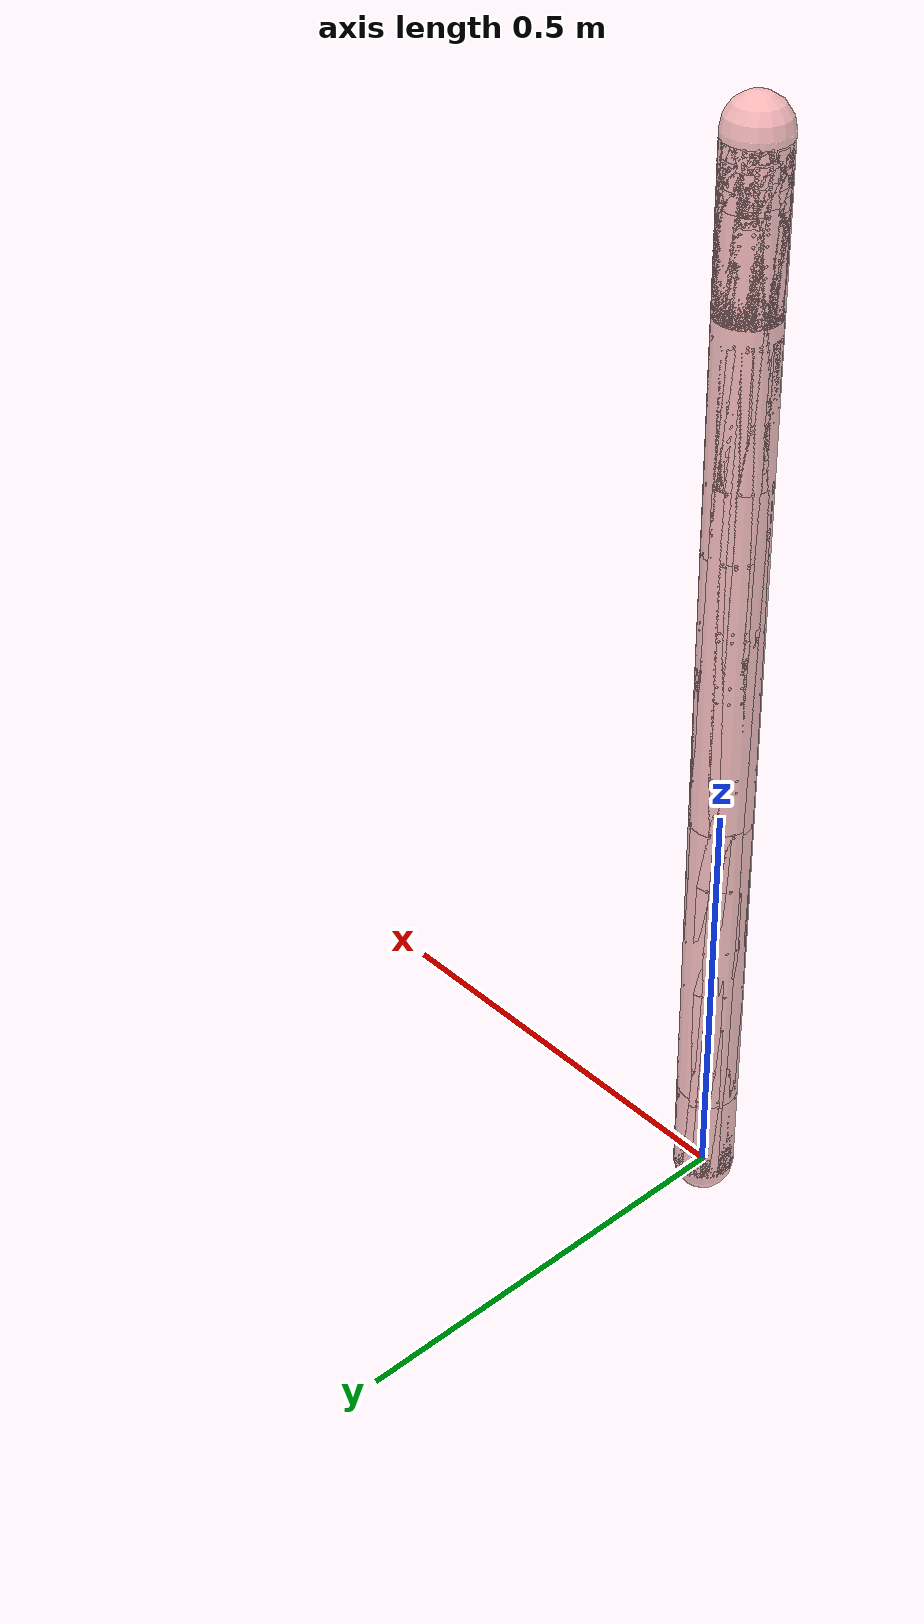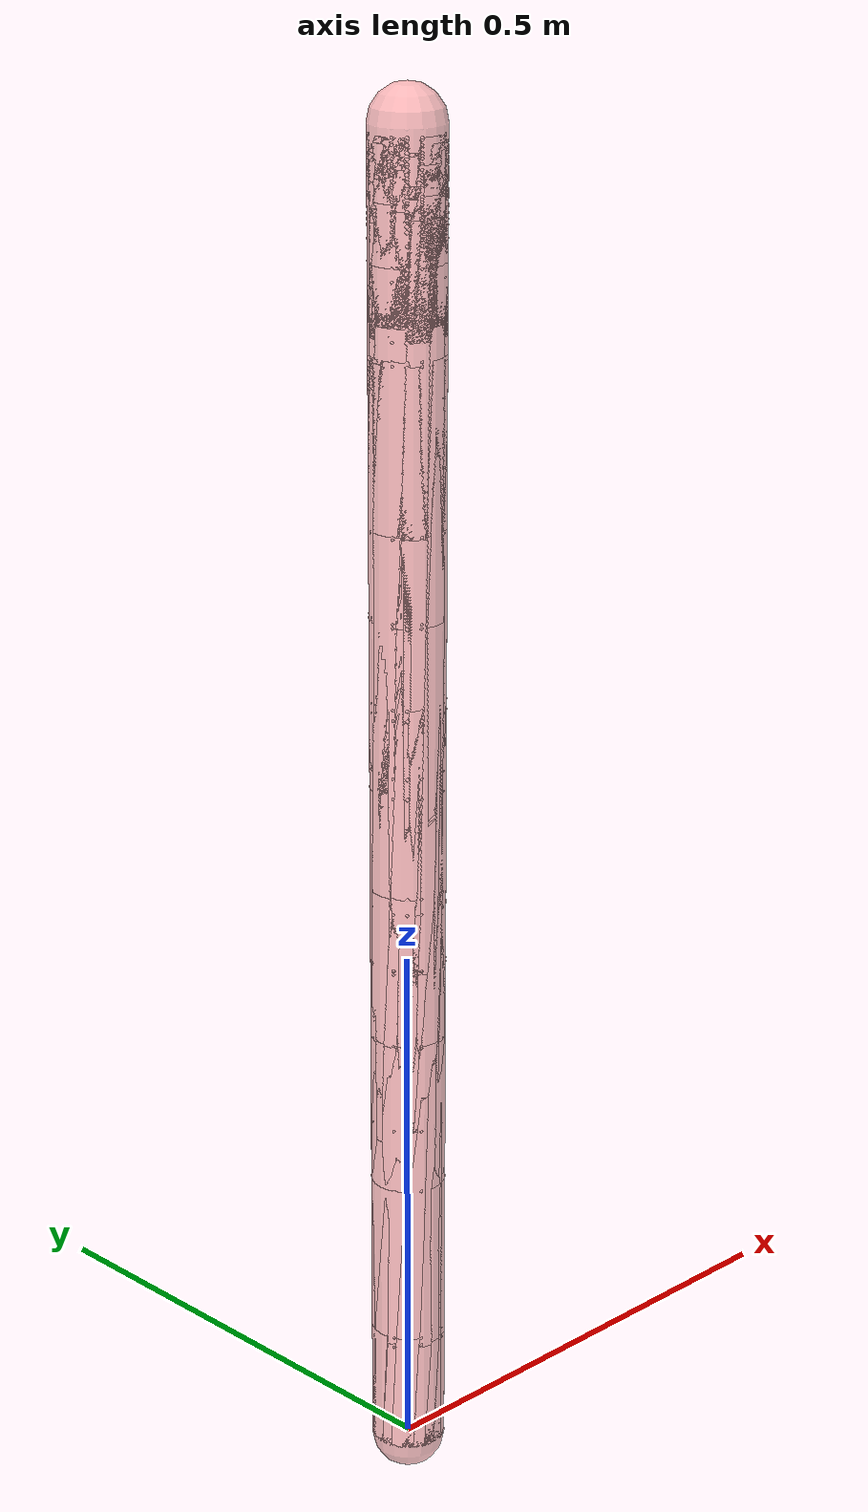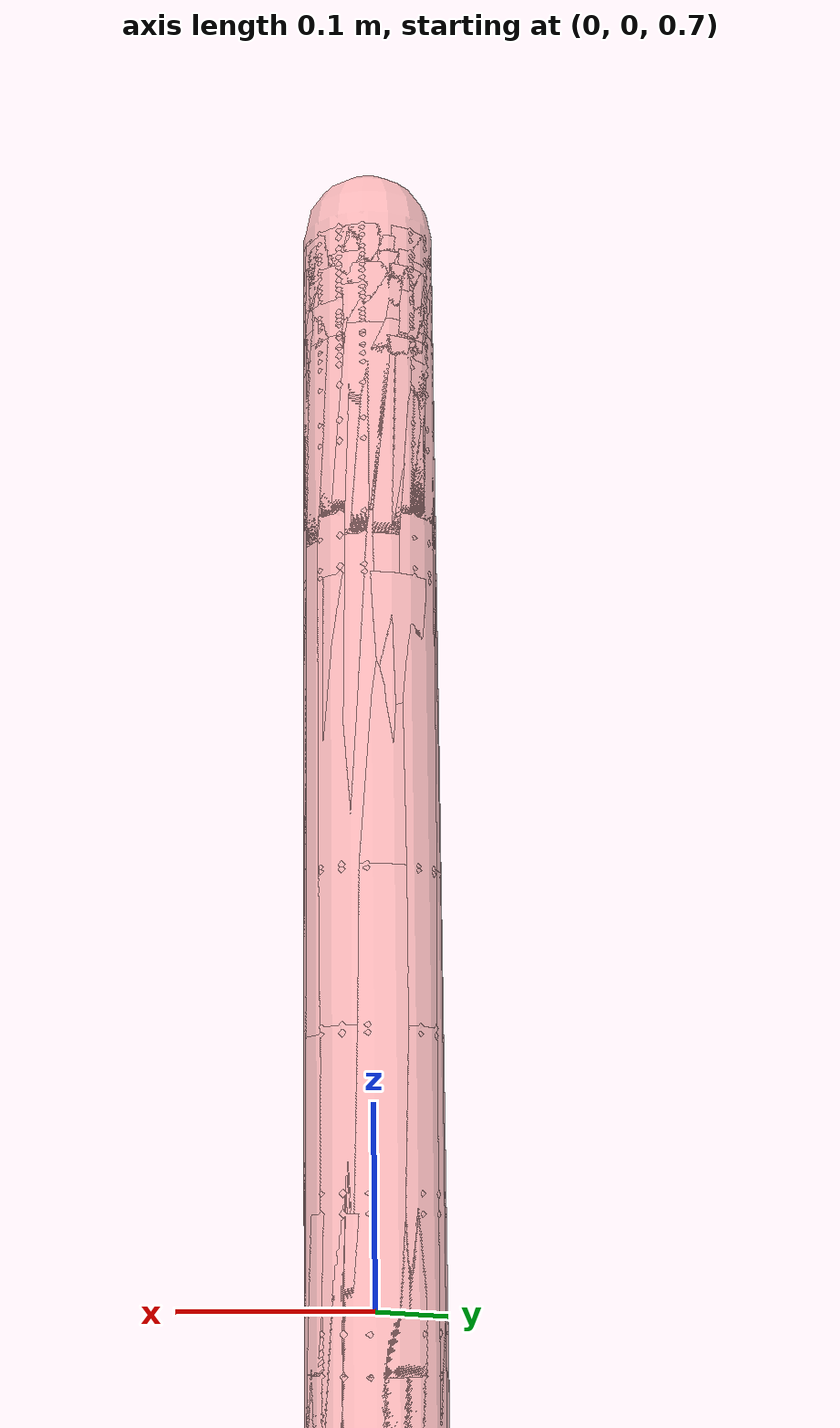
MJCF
<?xml version="1.0" encoding="utf-8"?>
<mujoco model="base_cabinet_600_with_human">
  <compiler angle="radian" meshdir="assets" texturedir="assets" autolimits="true"/>
  <option gravity="0 0 0"/>

  <default>
    <default class="human">
      <geom type="capsule" rgba="1 0.6 0.6 0.35" density="10" solimp="0.998 0.998 0.001" solref="0.004 1"/>
      <joint damping="2" armature="0.02" solimplimit="0.998 0.998 0.001" solreflimit="0.004 1"/>
      <default class="joint_collision">
        <geom group="0" contype="2" conaffinity="0"/>
      </default>
      <default class="bone_collision">
        <geom group="0" contype="2" conaffinity="0"/>
      </default>
    </default>
  </default>

  <worldbody>
    <!-- Articulated human fragment -->
    <body name="human" gravcomp="1" childclass="human">
      <inertial pos="0 0 0" mass="1e-3" diaginertia="1e-6 1e-6 1e-6"/>
      <body name="J0">
        <!-- Root translation -->
        <joint name="root_tx" type="slide" axis="1 0 0" damping="0.0" />
        <joint name="root_ty" type="slide" axis="0 1 0" damping="0.0" />
        <joint name="root_tz" type="slide" axis="0 0 1" damping="0.0" />
        <!-- Root rotation (Euler) -->
        <joint name="root_rx" type="hinge" axis="1 0 0" damping="0.0" />
        <joint name="root_ry" type="hinge" axis="0 1 0" damping="0.0" />
        <joint name="root_rz" type="hinge" axis="0 0 1" damping="0.0" />
        <geom type="sphere" size="0.01" rgba="0.2 0.6 1 0.7" class="joint_collision"/>
        <body name="L1">
          <joint name="joint_1" type="ball" damping="0.5"/>
          <geom name="bone1" type="capsule" size="0.035000 0.054762" fromto="0 0 0  0 0 0.109523" class="bone_collision" rgba="1 0.6 0.6 0.6"/>
          <body name="J1" pos="0 0 0.109523">
            <geom type="sphere" size="0.01" rgba="0.2 0.6 1 0.7" class="joint_collision"/>
            <body name="L4">
              <joint name="joint_4" type="ball" damping="0.5"/>
              <geom name="bone4" type="capsule" size="0.035000 0.196672" fromto="0 0 0  0 0 0.393344" class="bone_collision" rgba="1 0.6 0.6 0.6"/>
              <body name="J4" pos="0 0 0.393344">
                <geom type="sphere" size="0.01" rgba="0.2 0.6 1 0.7" class="joint_collision"/>
                <body name="L7">
                  <joint name="joint_7" type="ball" damping="0.5"/>
                  <geom name="bone7" type="capsule" size="0.035000 0.204836" fromto="0 0 0  0 0 0.409673" class="bone_collision" rgba="1 0.6 0.6 0.6"/>
                  <body name="J7" pos="0 0 0.409673">
                    <geom type="sphere" size="0.01" rgba="0.2 0.6 1 0.7" class="joint_collision"/>
                    <body name="L10">
                      <joint name="joint_10" type="ball" damping="0.5"/>
                      <geom name="bone10" type="capsule" size="0.035000 0.076836" fromto="0 0 0  0 0 0.153671" class="bone_collision" rgba="1 0.6 0.6 0.6"/>
                      <body name="J10" pos="0 0 0.153671">
                        <geom type="sphere" size="0.01" rgba="0.2 0.6 1 0.7" class="joint_collision"/>
                      </body>
                    </body>
                  </body>
                </body>
              </body>
            </body>
          </body>
        </body>
        <body name="L2">
          <joint name="joint_2" type="ball" damping="0.5"/>
          <geom name="bone2" type="capsule" size="0.035000 0.059721" fromto="0 0 0  0 0 0.119443" class="bone_collision" rgba="1 0.6 0.6 0.6"/>
          <body name="J2" pos="0 0 0.119443">
            <geom type="sphere" size="0.01" rgba="0.2 0.6 1 0.7" class="joint_collision"/>
            <body name="L5">
              <joint name="joint_5" type="ball" damping="0.5"/>
              <geom name="bone5" type="capsule" size="0.035000 0.189693" fromto="0 0 0  0 0 0.379385" class="bone_collision" rgba="1 0.6 0.6 0.6"/>
              <body name="J5" pos="0 0 0.379385">
                <geom type="sphere" size="0.01" rgba="0.2 0.6 1 0.7" class="joint_collision"/>
                <body name="L8">
                  <joint name="joint_8" type="ball" damping="0.5"/>
                  <geom name="bone8" type="capsule" size="0.035000 0.207934" fromto="0 0 0  0 0 0.415868" class="bone_collision" rgba="1 0.6 0.6 0.6"/>
                  <body name="J8" pos="0 0 0.415868">
                    <geom type="sphere" size="0.01" rgba="0.2 0.6 1 0.7" class="joint_collision"/>
                    <body name="L11">
                      <joint name="joint_11" type="ball" damping="0.5"/>
                      <geom name="bone11" type="capsule" size="0.035000 0.077804" fromto="0 0 0  0 0 0.155607" class="bone_collision" rgba="1 0.6 0.6 0.6"/>
                      <body name="J11" pos="0 0 0.155607">
                        <geom type="sphere" size="0.01" rgba="0.2 0.6 1 0.7" class="joint_collision"/>
                      </body>
                    </body>
                  </body>
                </body>
              </body>
            </body>
          </body>
        </body>
        <body name="L3">
          <joint name="joint_3" type="ball" damping="0.5"/>
          <geom name="bone3" type="capsule" size="0.035000 0.056054" fromto="0 0 0  0 0 0.112109" class="bone_collision" rgba="1 0.6 0.6 0.6"/>
          <body name="J3" pos="0 0 0.112109">
            <geom type="sphere" size="0.01" rgba="0.2 0.6 1 0.7" class="joint_collision"/>
            <body name="L6">
              <joint name="joint_6" type="ball" damping="0.5"/>
              <geom name="bone6" type="capsule" size="0.035000 0.082410" fromto="0 0 0  0 0 0.164820" class="bone_collision" rgba="1 0.6 0.6 0.6"/>
              <body name="J6" pos="0 0 0.164820">
                <geom type="sphere" size="0.01" rgba="0.2 0.6 1 0.7" class="joint_collision"/>
                <body name="L9">
                  <joint name="joint_9" type="ball" damping="0.5"/>
                  <geom name="bone9" type="capsule" size="0.035000 0.031222" fromto="0 0 0  0 0 0.062444" class="bone_collision" rgba="1 0.6 0.6 0.6"/>
                  <body name="J9" pos="0 0 0.062444">
                    <geom type="sphere" size="0.01" rgba="0.2 0.6 1 0.7" class="joint_collision"/>
                    <body name="L12">
                      <joint name="joint_12" type="ball" damping="0.5"/>
                      <geom name="bone12" type="capsule" size="0.035000 0.081407" fromto="0 0 0  0 0 0.162813" class="bone_collision" rgba="1 0.6 0.6 0.6"/>
                      <body name="J12" pos="0 0 0.162813">
                        <geom type="sphere" size="0.01" rgba="0.2 0.6 1 0.7" class="joint_collision"/>
                        <body name="L15">
                          <joint name="joint_15" type="ball" damping="0.5"/>
                          <geom name="bone15" type="capsule" size="0.035000 0.084414" fromto="0 0 0  0 0 0.168828" class="bone_collision" rgba="1 0.6 0.6 0.6"/>
                          <body name="J15" pos="0 0 0.168828">
                            <geom type="sphere" size="0.01" rgba="0.2 0.6 1 0.7" class="joint_collision"/>
                            <body name="L22">
                              <joint name="joint_22" type="ball" damping="0.5"/>
                              <geom name="bone22" type="capsule" size="0.035000 0.009640" fromto="0 0 0  0 0 0.019280" class="bone_collision" rgba="1 0.6 0.6 0.6"/>
                              <body name="J22" pos="0 0 0.019280">
                                <geom type="sphere" size="0.01" rgba="0.2 0.6 1 0.7" class="joint_collision"/>
                              </body>
                            </body>
                            <body name="L23">
                              <joint name="joint_23" type="ball" damping="0.5"/>
                              <geom name="bone23" type="capsule" size="0.035000 0.037323" fromto="0 0 0  0 0 0.074646" class="bone_collision" rgba="1 0.6 0.6 0.6"/>
                              <body name="J23" pos="0 0 0.074646">
                                <geom type="sphere" size="0.01" rgba="0.2 0.6 1 0.7" class="joint_collision"/>
                              </body>
                            </body>
                            <body name="L24">
                              <joint name="joint_24" type="ball" damping="0.5"/>
                              <geom name="bone24" type="capsule" size="0.035000 0.042130" fromto="0 0 0  0 0 0.084261" class="bone_collision" rgba="1 0.6 0.6 0.6"/>
                              <body name="J24" pos="0 0 0.084261">
                                <geom type="sphere" size="0.01" rgba="0.2 0.6 1 0.7" class="joint_collision"/>
                              </body>
                            </body>
                          </body>
                        </body>
                      </body>
                    </body>
                    <body name="L13">
                      <joint name="joint_13" type="ball" damping="0.5"/>
                      <geom name="bone13" type="capsule" size="0.035000 0.043647" fromto="0 0 0  0 0 0.087294" class="bone_collision" rgba="1 0.6 0.6 0.6"/>
                      <body name="J13" pos="0 0 0.087294">
                        <geom type="sphere" size="0.01" rgba="0.2 0.6 1 0.7" class="joint_collision"/>
                        <body name="L16">
                          <joint name="joint_16" type="ball" damping="0.5"/>
                          <geom name="bone16" type="capsule" size="0.035000 0.073494" fromto="0 0 0  0 0 0.146989" class="bone_collision" rgba="1 0.6 0.6 0.6"/>
                          <body name="J16" pos="0 0 0.146989">
                            <geom type="sphere" size="0.01" rgba="0.2 0.6 1 0.7" class="joint_collision"/>
                            <body name="L18">
                              <joint name="joint_18" type="ball" damping="0.5"/>
                              <geom name="bone18" type="capsule" size="0.035000 0.130816" fromto="0 0 0  0 0 0.261632" class="bone_collision" rgba="1 0.6 0.6 0.6"/>
                              <body name="J18" pos="0 0 0.261632">
                                <geom type="sphere" size="0.01" rgba="0.2 0.6 1 0.7" class="joint_collision"/>
                                <body name="L20">
                                  <joint name="joint_20" type="ball" damping="0.5"/>
                                  <geom name="bone20" type="capsule" size="0.035000 0.131932" fromto="0 0 0  0 0 0.263865" class="bone_collision" rgba="1 0.6 0.6 0.6"/>
                                  <body name="J20" pos="0 0 0.263865">
                                    <geom type="sphere" size="0.01" rgba="0.2 0.6 1 0.7" class="joint_collision"/>
                                    <body name="L25">
                                      <joint name="joint_25" type="ball" damping="0.5"/>
                                      <geom name="bone25" type="capsule" size="0.035000 0.052711" fromto="0 0 0  0 0 0.105423" class="bone_collision" rgba="1 0.6 0.6 0.6"/>
                                      <body name="J25" pos="0 0 0.105423">
                                        <geom type="sphere" size="0.01" rgba="0.2 0.6 1 0.7" class="joint_collision"/>
                                        <body name="L26">
                                          <joint name="joint_26" type="ball" damping="0.5"/>
                                          <geom name="bone26" type="capsule" size="0.035000 0.016511" fromto="0 0 0  0 0 0.033023" class="bone_collision" rgba="1 0.6 0.6 0.6"/>
                                          <body name="J26" pos="0 0 0.033023">
                                            <geom type="sphere" size="0.01" rgba="0.2 0.6 1 0.7" class="joint_collision"/>
                                            <body name="L27">
                                              <joint name="joint_27" type="ball" damping="0.5"/>
                                              <geom name="bone27" type="capsule" size="0.035000 0.011694" fromto="0 0 0  0 0 0.023388" class="bone_collision" rgba="1 0.6 0.6 0.6"/>
                                              <body name="J27" pos="0 0 0.023388">
                                                <geom type="sphere" size="0.01" rgba="0.2 0.6 1 0.7" class="joint_collision"/>
                                              </body>
                                            </body>
                                          </body>
                                        </body>
                                      </body>
                                    </body>
                                    <body name="L28">
                                      <joint name="joint_28" type="ball" damping="0.5"/>
                                      <geom name="bone28" type="capsule" size="0.035000 0.056226" fromto="0 0 0  0 0 0.112451" class="bone_collision" rgba="1 0.6 0.6 0.6"/>
                                      <body name="J28" pos="0 0 0.112451">
                                        <geom type="sphere" size="0.01" rgba="0.2 0.6 1 0.7" class="joint_collision"/>
                                        <body name="L29">
                                          <joint name="joint_29" type="ball" damping="0.5"/>
                                          <geom name="bone29" type="capsule" size="0.035000 0.015899" fromto="0 0 0  0 0 0.031797" class="bone_collision" rgba="1 0.6 0.6 0.6"/>
                                          <body name="J29" pos="0 0 0.031797">
                                            <geom type="sphere" size="0.01" rgba="0.2 0.6 1 0.7" class="joint_collision"/>
                                            <body name="L30">
                                              <joint name="joint_30" type="ball" damping="0.5"/>
                                              <geom name="bone30" type="capsule" size="0.035000 0.012256" fromto="0 0 0  0 0 0.024512" class="bone_collision" rgba="1 0.6 0.6 0.6"/>
                                              <body name="J30" pos="0 0 0.024512">
                                                <geom type="sphere" size="0.01" rgba="0.2 0.6 1 0.7" class="joint_collision"/>
                                              </body>
                                            </body>
                                          </body>
                                        </body>
                                      </body>
                                    </body>
                                    <body name="L31">
                                      <joint name="joint_31" type="ball" damping="0.5"/>
                                      <geom name="bone31" type="capsule" size="0.035000 0.049785" fromto="0 0 0  0 0 0.099569" class="bone_collision" rgba="1 0.6 0.6 0.6"/>
                                      <body name="J31" pos="0 0 0.099569">
                                        <geom type="sphere" size="0.01" rgba="0.2 0.6 1 0.7" class="joint_collision"/>
                                        <body name="L32">
                                          <joint name="joint_32" type="ball" damping="0.5"/>
                                          <geom name="bone32" type="capsule" size="0.035000 0.010143" fromto="0 0 0  0 0 0.020287" class="bone_collision" rgba="1 0.6 0.6 0.6"/>
                                          <body name="J32" pos="0 0 0.020287">
                                            <geom type="sphere" size="0.01" rgba="0.2 0.6 1 0.7" class="joint_collision"/>
                                            <body name="L33">
                                              <joint name="joint_33" type="ball" damping="0.5"/>
                                              <geom name="bone33" type="capsule" size="0.035000 0.009933" fromto="0 0 0  0 0 0.019867" class="bone_collision" rgba="1 0.6 0.6 0.6"/>
                                              <body name="J33" pos="0 0 0.019867">
                                                <geom type="sphere" size="0.01" rgba="0.2 0.6 1 0.7" class="joint_collision"/>
                                              </body>
                                            </body>
                                          </body>
                                        </body>
                                      </body>
                                    </body>
                                    <body name="L34">
                                      <joint name="joint_34" type="ball" damping="0.5"/>
                                      <geom name="bone34" type="capsule" size="0.035000 0.052607" fromto="0 0 0  0 0 0.105213" class="bone_collision" rgba="1 0.6 0.6 0.6"/>
                                      <body name="J34" pos="0 0 0.105213">
                                        <geom type="sphere" size="0.01" rgba="0.2 0.6 1 0.7" class="joint_collision"/>
                                        <body name="L35">
                                          <joint name="joint_35" type="ball" damping="0.5"/>
                                          <geom name="bone35" type="capsule" size="0.035000 0.014805" fromto="0 0 0  0 0 0.029609" class="bone_collision" rgba="1 0.6 0.6 0.6"/>
                                          <body name="J35" pos="0 0 0.029609">
                                            <geom type="sphere" size="0.01" rgba="0.2 0.6 1 0.7" class="joint_collision"/>
                                            <body name="L36">
                                              <joint name="joint_36" type="ball" damping="0.5"/>
                                              <geom name="bone36" type="capsule" size="0.035000 0.012521" fromto="0 0 0  0 0 0.025042" class="bone_collision" rgba="1 0.6 0.6 0.6"/>
                                              <body name="J36" pos="0 0 0.025042">
                                                <geom type="sphere" size="0.01" rgba="0.2 0.6 1 0.7" class="joint_collision"/>
                                              </body>
                                            </body>
                                          </body>
                                        </body>
                                      </body>
                                    </body>
                                    <body name="L37">
                                      <joint name="joint_37" type="ball" damping="0.5"/>
                                      <geom name="bone37" type="capsule" size="0.035000 0.025629" fromto="0 0 0  0 0 0.051259" class="bone_collision" rgba="1 0.6 0.6 0.6"/>
                                      <body name="J37" pos="0 0 0.051259">
                                        <geom type="sphere" size="0.01" rgba="0.2 0.6 1 0.7" class="joint_collision"/>
                                        <body name="L38">
                                          <joint name="joint_38" type="ball" damping="0.5"/>
                                          <geom name="bone38" type="capsule" size="0.035000 0.015647" fromto="0 0 0  0 0 0.031294" class="bone_collision" rgba="1 0.6 0.6 0.6"/>
                                          <body name="J38" pos="0 0 0.031294">
                                            <geom type="sphere" size="0.01" rgba="0.2 0.6 1 0.7" class="joint_collision"/>
                                            <body name="L39">
                                              <joint name="joint_39" type="ball" damping="0.5"/>
                                              <geom name="bone39" type="capsule" size="0.035000 0.013725" fromto="0 0 0  0 0 0.027451" class="bone_collision" rgba="1 0.6 0.6 0.6"/>
                                              <body name="J39" pos="0 0 0.027451">
                                                <geom type="sphere" size="0.01" rgba="0.2 0.6 1 0.7" class="joint_collision"/>
                                              </body>
                                            </body>
                                          </body>
                                        </body>
                                      </body>
                                    </body>
                                  </body>
                                </body>
                              </body>
                            </body>
                          </body>
                        </body>
                      </body>
                    </body>
                    <body name="L14">
                      <joint name="joint_14" type="ball" damping="0.5"/>
                      <geom name="bone14" type="capsule" size="0.035000 0.042843" fromto="0 0 0  0 0 0.085685" class="bone_collision" rgba="1 0.6 0.6 0.6"/>
                      <body name="J14" pos="0 0 0.085685">
                        <geom type="sphere" size="0.01" rgba="0.2 0.6 1 0.7" class="joint_collision"/>
                        <body name="L17">
                          <joint name="joint_17" type="ball" damping="0.5"/>
                          <geom name="bone17" type="capsule" size="0.035000 0.066668" fromto="0 0 0  0 0 0.133335" class="bone_collision" rgba="1 0.6 0.6 0.6"/>
                          <body name="J17" pos="0 0 0.133335">
                            <geom type="sphere" size="0.01" rgba="0.2 0.6 1 0.7" class="joint_collision"/>
                            <body name="L19">
                              <joint name="joint_19" type="ball" damping="0.5"/>
                              <geom name="bone19" type="capsule" size="0.035000 0.136600" fromto="0 0 0  0 0 0.273199" class="bone_collision" rgba="1 0.6 0.6 0.6"/>
                              <body name="J19" pos="0 0 0.273199">
                                <geom type="sphere" size="0.01" rgba="0.2 0.6 1 0.7" class="joint_collision"/>
                                <body name="L21">
                                  <joint name="joint_21" type="ball" damping="0.5"/>
                                  <geom name="bone21" type="capsule" size="0.035000 0.127718" fromto="0 0 0  0 0 0.255436" class="bone_collision" rgba="1 0.6 0.6 0.6"/>
                                  <body name="J21" pos="0 0 0.255436">
                                    <geom type="sphere" size="0.01" rgba="0.2 0.6 1 0.7" class="joint_collision"/>
                                    <body name="L40">
                                      <joint name="joint_40" type="ball" damping="0.5"/>
                                      <geom name="bone40" type="capsule" size="0.035000 0.052131" fromto="0 0 0  0 0 0.104262" class="bone_collision" rgba="1 0.6 0.6 0.6"/>
                                      <body name="J40" pos="0 0 0.104262">
                                        <geom type="sphere" size="0.01" rgba="0.2 0.6 1 0.7" class="joint_collision"/>
                                        <body name="L41">
                                          <joint name="joint_41" type="ball" damping="0.5"/>
                                          <geom name="bone41" type="capsule" size="0.035000 0.016721" fromto="0 0 0  0 0 0.033442" class="bone_collision" rgba="1 0.6 0.6 0.6"/>
                                          <body name="J41" pos="0 0 0.033442">
                                            <geom type="sphere" size="0.01" rgba="0.2 0.6 1 0.7" class="joint_collision"/>
                                            <body name="L42">
                                              <joint name="joint_42" type="ball" damping="0.5"/>
                                              <geom name="bone42" type="capsule" size="0.035000 0.011722" fromto="0 0 0  0 0 0.023444" class="bone_collision" rgba="1 0.6 0.6 0.6"/>
                                              <body name="J42" pos="0 0 0.023444">
                                                <geom type="sphere" size="0.01" rgba="0.2 0.6 1 0.7" class="joint_collision"/>
                                              </body>
                                            </body>
                                          </body>
                                        </body>
                                      </body>
                                    </body>
                                    <body name="L43">
                                      <joint name="joint_43" type="ball" damping="0.5"/>
                                      <geom name="bone43" type="capsule" size="0.035000 0.055564" fromto="0 0 0  0 0 0.111129" class="bone_collision" rgba="1 0.6 0.6 0.6"/>
                                      <body name="J43" pos="0 0 0.111129">
                                        <geom type="sphere" size="0.01" rgba="0.2 0.6 1 0.7" class="joint_collision"/>
                                        <body name="L44">
                                          <joint name="joint_44" type="ball" damping="0.5"/>
                                          <geom name="bone44" type="capsule" size="0.035000 0.015902" fromto="0 0 0  0 0 0.031803" class="bone_collision" rgba="1 0.6 0.6 0.6"/>
                                          <body name="J44" pos="0 0 0.031803">
                                            <geom type="sphere" size="0.01" rgba="0.2 0.6 1 0.7" class="joint_collision"/>
                                            <body name="L45">
                                              <joint name="joint_45" type="ball" damping="0.5"/>
                                              <geom name="bone45" type="capsule" size="0.035000 0.012370" fromto="0 0 0  0 0 0.024740" class="bone_collision" rgba="1 0.6 0.6 0.6"/>
                                              <body name="J45" pos="0 0 0.024740">
                                                <geom type="sphere" size="0.01" rgba="0.2 0.6 1 0.7" class="joint_collision"/>
                                              </body>
                                            </body>
                                          </body>
                                        </body>
                                      </body>
                                    </body>
                                    <body name="L46">
                                      <joint name="joint_46" type="ball" damping="0.5"/>
                                      <geom name="bone46" type="capsule" size="0.035000 0.049784" fromto="0 0 0  0 0 0.099567" class="bone_collision" rgba="1 0.6 0.6 0.6"/>
                                      <body name="J46" pos="0 0 0.099567">
                                        <geom type="sphere" size="0.01" rgba="0.2 0.6 1 0.7" class="joint_collision"/>
                                        <body name="L47">
                                          <joint name="joint_47" type="ball" damping="0.5"/>
                                          <geom name="bone47" type="capsule" size="0.035000 0.010187" fromto="0 0 0  0 0 0.020375" class="bone_collision" rgba="1 0.6 0.6 0.6"/>
                                          <body name="J47" pos="0 0 0.020375">
                                            <geom type="sphere" size="0.01" rgba="0.2 0.6 1 0.7" class="joint_collision"/>
                                            <body name="L48">
                                              <joint name="joint_48" type="ball" damping="0.5"/>
                                              <geom name="bone48" type="capsule" size="0.035000 0.010006" fromto="0 0 0  0 0 0.020011" class="bone_collision" rgba="1 0.6 0.6 0.6"/>
                                              <body name="J48" pos="0 0 0.020011">
                                                <geom type="sphere" size="0.01" rgba="0.2 0.6 1 0.7" class="joint_collision"/>
                                              </body>
                                            </body>
                                          </body>
                                        </body>
                                      </body>
                                    </body>
                                    <body name="L49">
                                      <joint name="joint_49" type="ball" damping="0.5"/>
                                      <geom name="bone49" type="capsule" size="0.035000 0.052245" fromto="0 0 0  0 0 0.104490" class="bone_collision" rgba="1 0.6 0.6 0.6"/>
                                      <body name="J49" pos="0 0 0.104490">
                                        <geom type="sphere" size="0.01" rgba="0.2 0.6 1 0.7" class="joint_collision"/>
                                        <body name="L50">
                                          <joint name="joint_50" type="ball" damping="0.5"/>
                                          <geom name="bone50" type="capsule" size="0.035000 0.014680" fromto="0 0 0  0 0 0.029359" class="bone_collision" rgba="1 0.6 0.6 0.6"/>
                                          <body name="J50" pos="0 0 0.029359">
                                            <geom type="sphere" size="0.01" rgba="0.2 0.6 1 0.7" class="joint_collision"/>
                                            <body name="L51">
                                              <joint name="joint_51" type="ball" damping="0.5"/>
                                              <geom name="bone51" type="capsule" size="0.035000 0.012395" fromto="0 0 0  0 0 0.024789" class="bone_collision" rgba="1 0.6 0.6 0.6"/>
                                              <body name="J51" pos="0 0 0.024789">
                                                <geom type="sphere" size="0.01" rgba="0.2 0.6 1 0.7" class="joint_collision"/>
                                              </body>
                                            </body>
                                          </body>
                                        </body>
                                      </body>
                                    </body>
                                    <body name="L52">
                                      <joint name="joint_52" type="ball" damping="0.5"/>
                                      <geom name="bone52" type="capsule" size="0.035000 0.025929" fromto="0 0 0  0 0 0.051859" class="bone_collision" rgba="1 0.6 0.6 0.6"/>
                                      <body name="J52" pos="0 0 0.051859">
                                        <geom type="sphere" size="0.01" rgba="0.2 0.6 1 0.7" class="joint_collision"/>
                                        <body name="L53">
                                          <joint name="joint_53" type="ball" damping="0.5"/>
                                          <geom name="bone53" type="capsule" size="0.035000 0.015621" fromto="0 0 0  0 0 0.031241" class="bone_collision" rgba="1 0.6 0.6 0.6"/>
                                          <body name="J53" pos="0 0 0.031241">
                                            <geom type="sphere" size="0.01" rgba="0.2 0.6 1 0.7" class="joint_collision"/>
                                            <body name="L54">
                                              <joint name="joint_54" type="ball" damping="0.5"/>
                                              <geom name="bone54" type="capsule" size="0.035000 0.013594" fromto="0 0 0  0 0 0.027189" class="bone_collision" rgba="1 0.6 0.6 0.6"/>
                                              <body name="J54" pos="0 0 0.027189">
                                                <geom type="sphere" size="0.01" rgba="0.2 0.6 1 0.7" class="joint_collision"/>
                                              </body>
                                            </body>
                                          </body>
                                        </body>
                                      </body>
                                    </body>
                                  </body>
                                </body>
                              </body>
                            </body>
                          </body>
                        </body>
                      </body>
                    </body>
                  </body>
                </body>
              </body>
            </body>
          </body>
        </body>
      </body>
    </body>
  </worldbody>
</mujoco>
